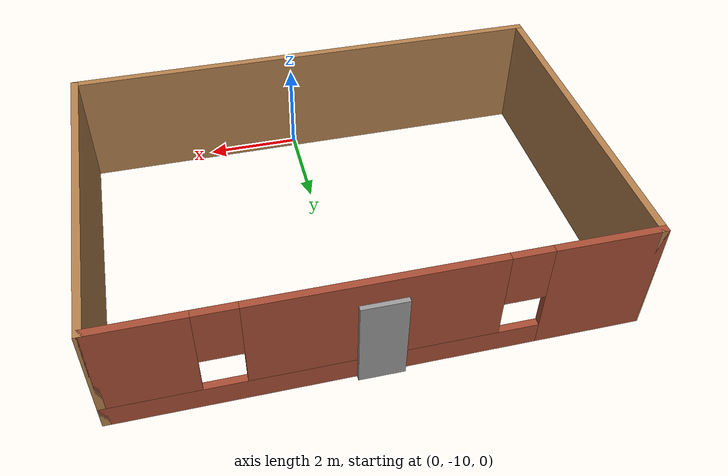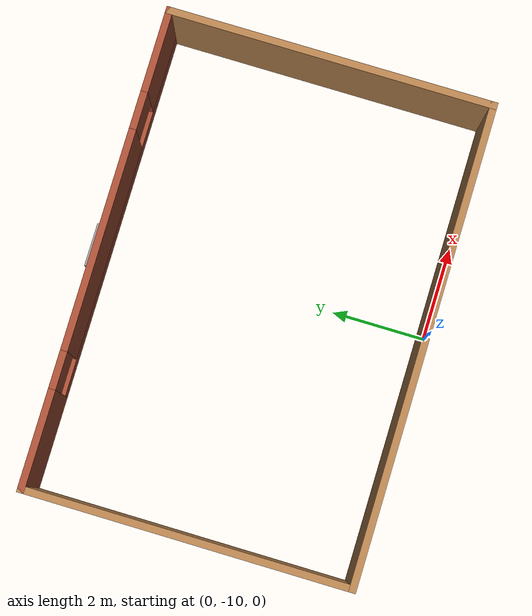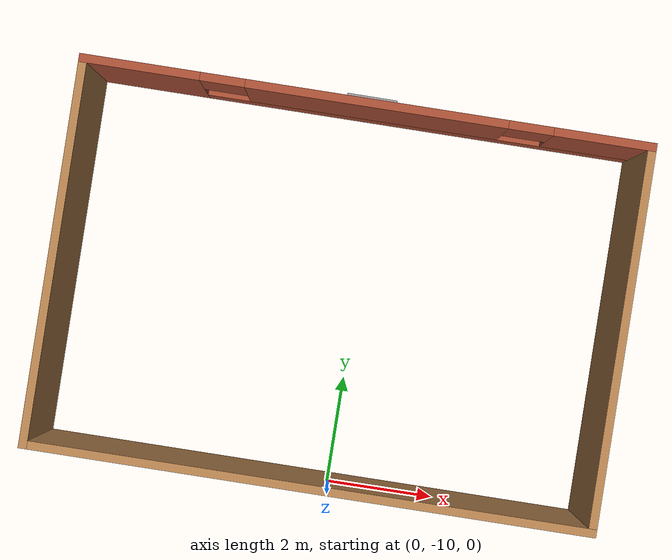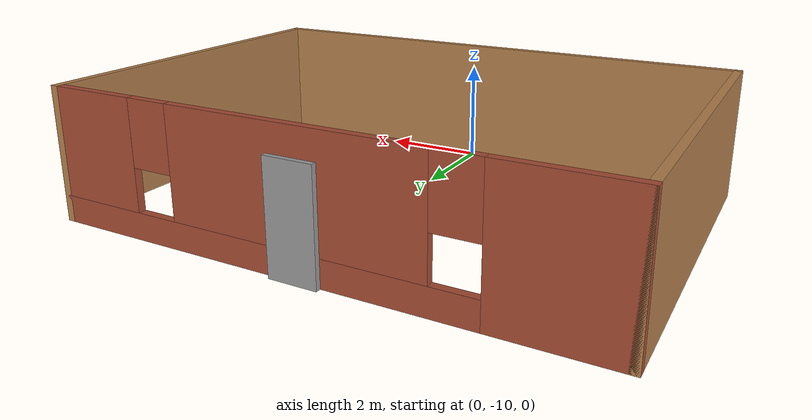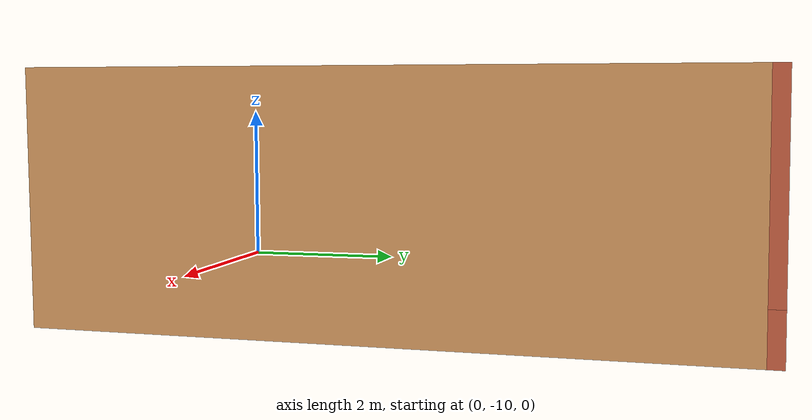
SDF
<?xml version='1.0'?>
<sdf version='1.7'>
  <model name='Generic_1_room_house'>
    <pose>-0.348594 -4.99086 0 0 -0 0</pose>
    <link name='Door_6'>
      <collision name='Door_6_Collision'>
        <geometry>
          <box>
            <size>0.9 0.17 2</size>
          </box>
        </geometry>
        <pose>0 0 1 0 -0 0</pose>
      </collision>
      <visual name='Door_6_Visual'>
        <pose>0 0 1 0 -0 0</pose>
        <geometry>
          <box>
            <size>0.9 0.17 2</size>
          </box>
        </geometry>
        <material>
          <script>
            <uri>file://media/materials/scripts/gazebo.material</uri>
            <name>Gazebo/Grey</name>
          </script>
        </material>
      </visual>
      <pose>0.067315 2.02255 0 0 -0 3.13799</pose>
    </link>
    <link name='Wall_22'>
      <pose>-0 1.93414 0 0 -0 0</pose>
      <visual name='Wall_22_Visual_0'>
        <pose>-4.05311 0 1.25 0 -0 0</pose>
        <geometry>
          <box>
            <size>2.14379 0.15 2.5</size>
          </box>
        </geometry>
        <material>
          <script>
            <uri>file://media/materials/scripts/gazebo.material</uri>
            <name>Gazebo/Bricks</name>
          </script>
          <ambient>1 1 1 1</ambient>
        </material>
        <meta>
          <layer>0</layer>
        </meta>
      </visual>
      <collision name='Wall_22_Collision_0'>
        <geometry>
          <box>
            <size>2.14379 0.15 2.5</size>
          </box>
        </geometry>
        <pose>-4.05311 0 1.25 0 -0 0</pose>
      </collision>
      <visual name='Wall_22_Visual_1'>
        <pose>1.0719 0 0.25 0 -0 0</pose>
        <geometry>
          <box>
            <size>8.10621 0.15 0.5</size>
          </box>
        </geometry>
        <material>
          <script>
            <uri>file://media/materials/scripts/gazebo.material</uri>
            <name>Gazebo/Bricks</name>
          </script>
          <ambient>1 1 1 1</ambient>
        </material>
        <meta>
          <layer>0</layer>
        </meta>
      </visual>
      <collision name='Wall_22_Collision_1'>
        <geometry>
          <box>
            <size>8.10621 0.15 0.5</size>
          </box>
        </geometry>
        <pose>1.0719 0 0.25 0 -0 0</pose>
      </collision>
      <visual name='Wall_22_Visual_2'>
        <pose>0.160358 0 1.5 0 -0 0</pose>
        <geometry>
          <box>
            <size>4.68314 0.15 2</size>
          </box>
        </geometry>
        <material>
          <script>
            <uri>file://media/materials/scripts/gazebo.material</uri>
            <name>Gazebo/Bricks</name>
          </script>
          <ambient>1 1 1 1</ambient>
        </material>
        <meta>
          <layer>0</layer>
        </meta>
      </visual>
      <collision name='Wall_22_Collision_2'>
        <geometry>
          <box>
            <size>4.68314 0.15 2</size>
          </box>
        </geometry>
        <pose>0.160358 0 1.5 0 -0 0</pose>
      </collision>
      <visual name='Wall_22_Visual_3'>
        <pose>4.21346 0 1.5 0 -0 0</pose>
        <geometry>
          <box>
            <size>1.82308 0.15 2</size>
          </box>
        </geometry>
        <material>
          <script>
            <uri>file://media/materials/scripts/gazebo.material</uri>
            <name>Gazebo/Bricks</name>
          </script>
          <ambient>1 1 1 1</ambient>
        </material>
        <meta>
          <layer>0</layer>
        </meta>
      </visual>
      <collision name='Wall_22_Collision_3'>
        <geometry>
          <box>
            <size>1.82308 0.15 2</size>
          </box>
        </geometry>
        <pose>4.21346 0 1.5 0 -0 0</pose>
      </collision>
      <visual name='Wall_22_Visual_4'>
        <pose>-2.58121 0 1.9 0 -0 0</pose>
        <geometry>
          <box>
            <size>0.8 0.15 1.2</size>
          </box>
        </geometry>
        <material>
          <script>
            <uri>file://media/materials/scripts/gazebo.material</uri>
            <name>Gazebo/Bricks</name>
          </script>
          <ambient>1 1 1 1</ambient>
        </material>
        <meta>
          <layer>0</layer>
        </meta>
      </visual>
      <collision name='Wall_22_Collision_4'>
        <geometry>
          <box>
            <size>0.8 0.15 1.2</size>
          </box>
        </geometry>
        <pose>-2.58121 0 1.9 0 -0 0</pose>
      </collision>
      <visual name='Wall_22_Visual_5'>
        <pose>2.90192 0 1.9 0 -0 0</pose>
        <geometry>
          <box>
            <size>0.8 0.15 1.2</size>
          </box>
        </geometry>
        <material>
          <script>
            <uri>file://media/materials/scripts/gazebo.material</uri>
            <name>Gazebo/Bricks</name>
          </script>
          <ambient>1 1 1 1</ambient>
        </material>
        <meta>
          <layer>0</layer>
        </meta>
      </visual>
      <collision name='Wall_22_Collision_5'>
        <geometry>
          <box>
            <size>0.8 0.15 1.2</size>
          </box>
        </geometry>
        <pose>2.90192 0 1.9 0 -0 0</pose>
      </collision>
    </link>
    <link name='Wall_27'>
      <collision name='Wall_27_Collision'>
        <geometry>
          <box>
            <size>7 0.15 2.5</size>
          </box>
        </geometry>
        <pose>0 0 1.25 0 -0 0</pose>
      </collision>
      <visual name='Wall_27_Visual'>
        <pose>0 0 1.25 0 -0 0</pose>
        <geometry>
          <box>
            <size>7 0.15 2.5</size>
          </box>
        </geometry>
        <material>
          <script>
            <uri>file://media/materials/scripts/gazebo.material</uri>
            <name>Gazebo/Wood</name>
          </script>
          <ambient>1 1 1 1</ambient>
        </material>
        <meta>
          <layer>0</layer>
        </meta>
      </visual>
      <pose>-5.05 -1.49086 0 0 -0 -1.5708</pose>
    </link>
    <link name='Wall_28'>
      <collision name='Wall_28_Collision'>
        <geometry>
          <box>
            <size>10.25 0.15 2.5</size>
          </box>
        </geometry>
        <pose>0 0 1.25 0 -0 0</pose>
      </collision>
      <visual name='Wall_28_Visual'>
        <pose>0 0 1.25 0 -0 0</pose>
        <geometry>
          <box>
            <size>10.25 0.15 2.5</size>
          </box>
        </geometry>
        <material>
          <script>
            <uri>file://media/materials/scripts/gazebo.material</uri>
            <name>Gazebo/Wood</name>
          </script>
          <ambient>1 1 1 1</ambient>
        </material>
        <meta>
          <layer>0</layer>
        </meta>
      </visual>
      <pose>-0 -4.91586 0 0 -0 0</pose>
    </link>
    <link name='Wall_29'>
      <collision name='Wall_29_Collision'>
        <geometry>
          <box>
            <size>7 0.15 2.5</size>
          </box>
        </geometry>
        <pose>0 0 1.25 0 -0 0</pose>
      </collision>
      <visual name='Wall_29_Visual'>
        <pose>0 0 1.25 0 -0 0</pose>
        <geometry>
          <box>
            <size>7 0.15 2.5</size>
          </box>
        </geometry>
        <material>
          <script>
            <uri>file://media/materials/scripts/gazebo.material</uri>
            <name>Gazebo/Wood</name>
          </script>
          <ambient>1 1 1 1</ambient>
        </material>
        <meta>
          <layer>0</layer>
        </meta>
      </visual>
      <pose>5.05 -1.49086 0 0 -0 1.5708</pose>
    </link>
    <static>1</static>
  </model>
</sdf>
